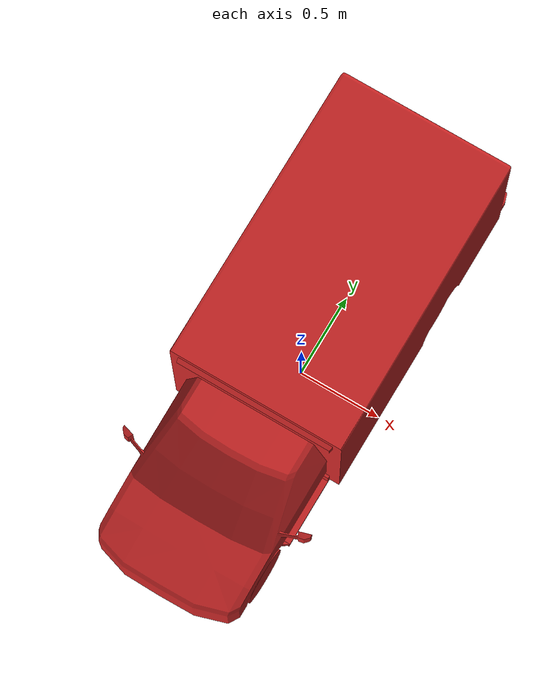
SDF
<?xml version="1.0" ?>
<sdf version="1.6">
  <model name="my_model">
    <static>true</static>
    <link name="link">
      <collision name="collision">
        <geometry>
          <mesh>
            <scale>0.01 0.01 0.01</scale>
            <uri>model://ambulance/meshes/ambulance.obj</uri>
          </mesh>
        </geometry>
      </collision>
      <visual name="visual">
        <geometry>
          <mesh>
            <scale>0.01 0.01 0.01</scale>
            <uri>model://ambulance/meshes/ambulance.obj</uri>
          </mesh>
        </geometry>
        <material>
          <script>
            <uri>file://media/materials/scripts/gazebo.material</uri>
            <name>Gazebo/Red</name>
          </script>
        </material>
      </visual>
    </link>
  </model>
</sdf>
